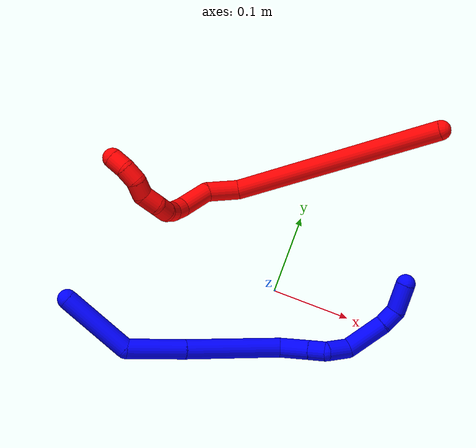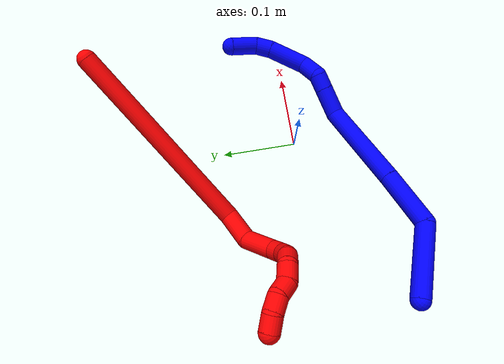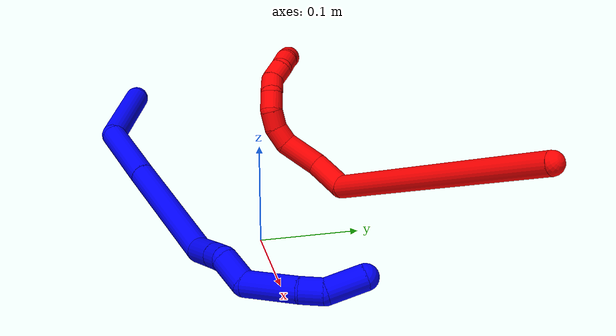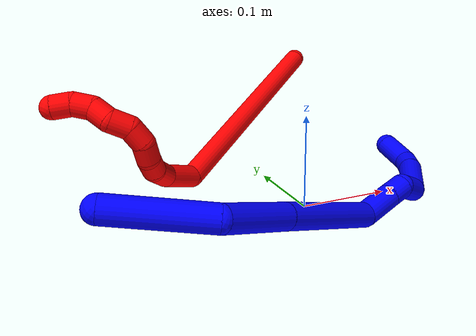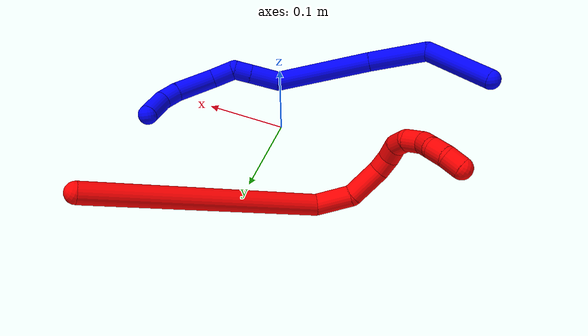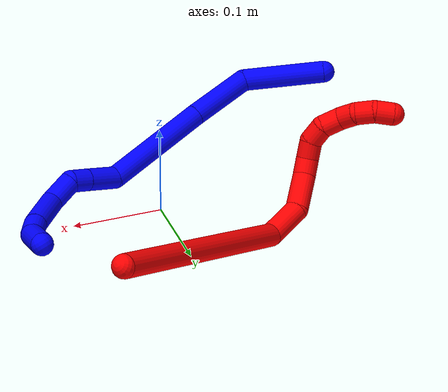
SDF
<sdf version="1.7">
 <world name="default">
  <model name="photoneo_s_sensor">
   <static>1</static>
   <pose>0 0 2 1.57079 1.57079 3.14159</pose>
   <link name="link">
    <inertial><mass>0.1</mass></inertial>
    <sensor name="sensor" type="depth">
     <update_rate>30</update_rate>
     <camera>
      <horizontal_fov>1.22</horizontal_fov>
      <image><width>1920</width><height>1200</height><format>B8G8R8</format></image>
      <clip><near>0.1</near><far>4</far></clip>
      <depth_camera><output>points</output></depth_camera>
     </camera>
     <plugin name="camera_plugin" filename="libgazebo_ros_depth_camera.so">
      <baseline>0.2</baseline>
      <alwaysOn>1</alwaysOn>
      <updateRate>0.0</updateRate>
      <cameraName>camera_ir</cameraName>
      <imageTopicName>/camera/color/image_raw</imageTopicName>
      <cameraInfoTopicName>/camera/color/camera_info</cameraInfoTopicName>
      <depthImageTopicName>/camera/depth/image_raw</depthImageTopicName>
      <depthImageCameraInfoTopicName>/camera/depth/camera_info</depthImageCameraInfoTopicName>
      <pointCloudTopicName>/camera/depth/points</pointCloudTopicName>
      <frameName>fr_optical</frameName>
      <pointCloudCutoff>0.1</pointCloudCutoff>
      <pointCloudCutoffMax>2.0</pointCloudCutoffMax>
      <distortionK1>0</distortionK1>
      <distortionK2>0</distortionK2>
      <distortionK3>0</distortionK3>
      <distortionT1>0</distortionT1>
      <distortionT2>0</distortionT2>
      <CxPrime>0</CxPrime>
      <Cx>0</Cx>
      <Cy>0</Cy>
      <focalLength>0</focalLength>
      <hackBaseline>0</hackBaseline>
     </plugin>
    </sensor>
   </link>
  </model>
  <model name="bin">
   <static>1</static>
   <link name="bottom">
    <collision name="collision-bottom">
     <pose>0 0 -0.01 0 -0 0</pose>
     <geometry><box><size>0.8 0.6 0.02</size></box></geometry>
     <surface>
      <friction><ode><mu>100</mu><mu2>100</mu2></ode></friction>
      <contact><collide_bitmask>65535</collide_bitmask></contact>
     </surface>
    </collision>
   </link>
   <link name="west_wall">
    <collision name="collision-west_wall">
     <pose>-0.41 0 0.1 0 -0 0</pose>
     <geometry><box><size>0.02 0.6 0.2</size></box></geometry>
     <surface>
      <friction><ode><mu>100</mu><mu2>100</mu2></ode></friction>
      <contact><collide_bitmask>65535</collide_bitmask></contact>
     </surface>
    </collision>
   </link>
   <link name="east_wall">
    <collision name="collision-east_wall">
     <pose>0.41 0 0.1 0 -0 0</pose>
     <geometry><box><size>0.02 0.6 0.2</size></box></geometry>
     <surface>
      <friction><ode><mu>100</mu><mu2>100</mu2></ode></friction>
      <contact><collide_bitmask>65535</collide_bitmask></contact>
     </surface>
    </collision>
   </link>
   <link name="south_wall">
    <collision name="collision-south_wall">
     <pose>0 -0.31 0.1 0 -0 0</pose>
     <geometry><box><size>0.8 0.02 0.2</size></box></geometry>
     <surface>
      <friction><ode><mu>100</mu><mu2>100</mu2></ode></friction>
      <contact><collide_bitmask>65535</collide_bitmask></contact>
     </surface>
    </collision>
   </link>
   <link name="north_wall">
    <collision name="collision-north_wall">
     <pose>0 0.31 0.1 0 -0 0</pose>
     <geometry><box><size>0.8 0.02 0.2</size></box></geometry>
     <surface>
      <friction><ode><mu>100</mu><mu2>100</mu2></ode></friction>
      <contact><collide_bitmask>65535</collide_bitmask></contact>
     </surface>
    </collision>
   </link>
  </model>
  <model name="1">
   <static>0</static>
   <link name="1">
    <collision name="collision-cylinder-e_1_1_4">
     <pose>0.041172 -0.010631 0.019229 0.505023 1.08057 0.307092</pose>
     <geometry><cylinder><radius>0.0125</radius><length>0.093336</length></cylinder></geometry>
     <surface>
      <friction><ode><mu>1.16</mu><mu2>1.16</mu2><slip1>0</slip1><slip2>0</slip2></ode></friction>
      <contact><ode><kp>1e+06</kp><kd>1</kd><max_vel>0</max_vel><min_depth>0.001</min_depth></ode></contact>
     </surface>
    </collision>
    <visual name="visual-cylinder-e_1_1_4">
     <pose>0.041172 -0.010631 0.019229 0.505023 1.08057 0.307092</pose>
     <geometry><cylinder><radius>0.0125</radius><length>0.093336</length></cylinder></geometry>
     <material><ambient>0 0 1 1</ambient></material>
    </visual>
    <collision name="collision-cylinder-e_2_4_5">
     <pose>0.118535 -0.012038 0.035811 -1.85039 1.31161 -1.59196</pose>
     <geometry><cylinder><radius>0.0125</radius><length>0.074885</length></cylinder></geometry>
     <surface>
      <friction><ode><mu>1.16</mu><mu2>1.16</mu2><slip1>0</slip1><slip2>0</slip2></ode></friction>
      <contact><ode><kp>1e+06</kp><kd>1</kd><max_vel>0</max_vel><min_depth>0.001</min_depth></ode></contact>
     </surface>
    </collision>
    <visual name="visual-cylinder-e_2_4_5">
     <pose>0.118535 -0.012038 0.035811 -1.85039 1.31161 -1.59196</pose>
     <geometry><cylinder><radius>0.0125</radius><length>0.074885</length></cylinder></geometry>
     <material><ambient>0 0 1 1</ambient></material>
    </visual>
    <collision name="collision-cylinder-e_3_5_6">
     <pose>0.214619 0.013001 0.026823 -1.95206 1.29364 -1.68065</pose>
     <geometry><cylinder><radius>0.0125</radius><length>0.124538</length></cylinder></geometry>
     <surface>
      <friction><ode><mu>1.16</mu><mu2>1.16</mu2><slip1>0</slip1><slip2>0</slip2></ode></friction>
      <contact><ode><kp>1e+06</kp><kd>1</kd><max_vel>0</max_vel><min_depth>0.001</min_depth></ode></contact>
     </surface>
    </collision>
    <visual name="visual-cylinder-e_3_5_6">
     <pose>0.214619 0.013001 0.026823 -1.95206 1.29364 -1.68065</pose>
     <geometry><cylinder><radius>0.0125</radius><length>0.124538</length></cylinder></geometry>
     <material><ambient>0 0 1 1</ambient></material>
    </visual>
    <collision name="collision-cylinder-e_4_6_7">
     <pose>0.289652 0.038183 0.027811 -0.906935 0.904924 -0.46521</pose>
     <geometry><cylinder><radius>0.0125</radius><length>0.038507</length></cylinder></geometry>
     <surface>
      <friction><ode><mu>1.16</mu><mu2>1.16</mu2><slip1>0</slip1><slip2>0</slip2></ode></friction>
      <contact><ode><kp>1e+06</kp><kd>1</kd><max_vel>0</max_vel><min_depth>0.001</min_depth></ode></contact>
     </surface>
    </collision>
    <visual name="visual-cylinder-e_4_6_7">
     <pose>0.289652 0.038183 0.027811 -0.906935 0.904924 -0.46521</pose>
     <geometry><cylinder><radius>0.0125</radius><length>0.038507</length></cylinder></geometry>
     <material><ambient>0 0 1 1</ambient></material>
    </visual>
    <collision name="collision-cylinder-e_5_7_8">
     <pose>0.313429 0.052743 0.039224 -0.904205 0.917805 -0.470999</pose>
     <geometry><cylinder><radius>0.0125</radius><length>0.021745</length></cylinder></geometry>
     <surface>
      <friction><ode><mu>1.16</mu><mu2>1.16</mu2><slip1>0</slip1><slip2>0</slip2></ode></friction>
      <contact><ode><kp>1e+06</kp><kd>1</kd><max_vel>0</max_vel><min_depth>0.001</min_depth></ode></contact>
     </surface>
    </collision>
    <visual name="visual-cylinder-e_5_7_8">
     <pose>0.313429 0.052743 0.039224 -0.904205 0.917805 -0.470999</pose>
     <geometry><cylinder><radius>0.0125</radius><length>0.021745</length></cylinder></geometry>
     <material><ambient>0 0 1 1</ambient></material>
    </visual>
    <collision name="collision-cylinder-e_6_8_9">
     <pose>0.337015 0.061987 0.039115 -2.37329 1.19885 -2.07316</pose>
     <geometry><cylinder><radius>0.0125</radius><length>0.032096</length></cylinder></geometry>
     <surface>
      <friction><ode><mu>1.16</mu><mu2>1.16</mu2><slip1>0</slip1><slip2>0</slip2></ode></friction>
      <contact><ode><kp>1e+06</kp><kd>1</kd><max_vel>0</max_vel><min_depth>0.001</min_depth></ode></contact>
     </surface>
    </collision>
    <visual name="visual-cylinder-e_6_8_9">
     <pose>0.337015 0.061987 0.039115 -2.37329 1.19885 -2.07316</pose>
     <geometry><cylinder><radius>0.0125</radius><length>0.032096</length></cylinder></geometry>
     <material><ambient>0 0 1 1</ambient></material>
    </visual>
    <collision name="collision-cylinder-e_7_9_10">
     <pose>0.367165 0.087952 0.030127 -1.78619 0.595548 -0.728572</pose>
     <geometry><cylinder><radius>0.0125</radius><length>0.054189</length></cylinder></geometry>
     <surface>
      <friction><ode><mu>1.16</mu><mu2>1.16</mu2><slip1>0</slip1><slip2>0</slip2></ode></friction>
      <contact><ode><kp>1e+06</kp><kd>1</kd><max_vel>0</max_vel><min_depth>0.001</min_depth></ode></contact>
     </surface>
    </collision>
    <visual name="visual-cylinder-e_7_9_10">
     <pose>0.367165 0.087952 0.030127 -1.78619 0.595548 -0.728572</pose>
     <geometry><cylinder><radius>0.0125</radius><length>0.054189</length></cylinder></geometry>
     <material><ambient>0 0 1 1</ambient></material>
    </visual>
    <collision name="collision-cylinder-e_8_10_11">
     <pose>0.387365 0.119573 0.021778 -1.9217 0.45056 -0.633757</pose>
     <geometry><cylinder><radius>0.0125</radius><length>0.022971</length></cylinder></geometry>
     <surface>
      <friction><ode><mu>1.16</mu><mu2>1.16</mu2><slip1>0</slip1><slip2>0</slip2></ode></friction>
      <contact><ode><kp>1e+06</kp><kd>1</kd><max_vel>0</max_vel><min_depth>0.001</min_depth></ode></contact>
     </surface>
    </collision>
    <visual name="visual-cylinder-e_8_10_11">
     <pose>0.387365 0.119573 0.021778 -1.9217 0.45056 -0.633757</pose>
     <geometry><cylinder><radius>0.0125</radius><length>0.022971</length></cylinder></geometry>
     <material><ambient>0 0 1 1</ambient></material>
    </visual>
    <collision name="collision-cylinder-e_9_11_2">
     <pose>0.391457 0.147132 0.012182 -1.89721 -0.04826 0.067275</pose>
     <geometry><cylinder><radius>0.0125</radius><length>0.037733</length></cylinder></geometry>
     <surface>
      <friction><ode><mu>1.16</mu><mu2>1.16</mu2><slip1>0</slip1><slip2>0</slip2></ode></friction>
      <contact><ode><kp>1e+06</kp><kd>1</kd><max_vel>0</max_vel><min_depth>0.001</min_depth></ode></contact>
     </surface>
    </collision>
    <visual name="visual-cylinder-e_9_11_2">
     <pose>0.391457 0.147132 0.012182 -1.89721 -0.04826 0.067275</pose>
     <geometry><cylinder><radius>0.0125</radius><length>0.037733</length></cylinder></geometry>
     <material><ambient>0 0 1 1</ambient></material>
    </visual>
    <collision name="collision-sphere-2">
     <pose>0.390547 0.164981 0.006139 0 -0 0</pose>
     <geometry><sphere><radius>0.0125</radius></sphere></geometry>
     <surface>
      <friction><ode><mu>1.16</mu><mu2>1.16</mu2><slip1>0</slip1><slip2>0</slip2></ode></friction>
      <contact><ode><kp>1e+06</kp><kd>1</kd><max_vel>0</max_vel><min_depth>0.001</min_depth></ode></contact>
     </surface>
    </collision>
    <visual name="visual-sphere-2">
     <pose>0.390547 0.164981 0.006139 0 -0 0</pose>
     <geometry><sphere><radius>0.0125</radius></sphere></geometry>
     <material><ambient>0 0 1 1</ambient></material>
    </visual>
    <collision name="collision-sphere-11">
     <pose>0.392367 0.129282 0.018224 0 -0 0</pose>
     <geometry><sphere><radius>0.0125</radius></sphere></geometry>
     <surface>
      <friction><ode><mu>1.16</mu><mu2>1.16</mu2><slip1>0</slip1><slip2>0</slip2></ode></friction>
      <contact><ode><kp>1e+06</kp><kd>1</kd><max_vel>0</max_vel><min_depth>0.001</min_depth></ode></contact>
     </surface>
    </collision>
    <visual name="visual-sphere-11">
     <pose>0.392367 0.129282 0.018224 0 -0 0</pose>
     <geometry><sphere><radius>0.0125</radius></sphere></geometry>
     <material><ambient>0 0 1 1</ambient></material>
    </visual>
    <collision name="collision-sphere-10">
     <pose>0.382364 0.109863 0.025333 0 -0 0</pose>
     <geometry><sphere><radius>0.0125</radius></sphere></geometry>
     <surface>
      <friction><ode><mu>1.16</mu><mu2>1.16</mu2><slip1>0</slip1><slip2>0</slip2></ode></friction>
      <contact><ode><kp>1e+06</kp><kd>1</kd><max_vel>0</max_vel><min_depth>0.001</min_depth></ode></contact>
     </surface>
    </collision>
    <visual name="visual-sphere-10">
     <pose>0.382364 0.109863 0.025333 0 -0 0</pose>
     <geometry><sphere><radius>0.0125</radius></sphere></geometry>
     <material><ambient>0 0 1 1</ambient></material>
    </visual>
    <collision name="collision-sphere-9">
     <pose>0.351966 0.06604 0.034921 0 -0 0</pose>
     <geometry><sphere><radius>0.0125</radius></sphere></geometry>
     <surface>
      <friction><ode><mu>1.16</mu><mu2>1.16</mu2><slip1>0</slip1><slip2>0</slip2></ode></friction>
      <contact><ode><kp>1e+06</kp><kd>1</kd><max_vel>0</max_vel><min_depth>0.001</min_depth></ode></contact>
     </surface>
    </collision>
    <visual name="visual-sphere-9">
     <pose>0.351966 0.06604 0.034921 0 -0 0</pose>
     <geometry><sphere><radius>0.0125</radius></sphere></geometry>
     <material><ambient>0 0 1 1</ambient></material>
    </visual>
    <collision name="collision-sphere-4">
     <pose>0.082343 -0.021262 0.038459 0 -0 0</pose>
     <geometry><sphere><radius>0.0125</radius></sphere></geometry>
     <surface>
      <friction><ode><mu>1.16</mu><mu2>1.16</mu2><slip1>0</slip1><slip2>0</slip2></ode></friction>
      <contact><ode><kp>1e+06</kp><kd>1</kd><max_vel>0</max_vel><min_depth>0.001</min_depth></ode></contact>
     </surface>
    </collision>
    <visual name="visual-sphere-4">
     <pose>0.082343 -0.021262 0.038459 0 -0 0</pose>
     <geometry><sphere><radius>0.0125</radius></sphere></geometry>
     <material><ambient>0 0 1 1</ambient></material>
    </visual>
    <collision name="collision-sphere-1">
     <geometry><sphere><radius>0.0125</radius></sphere></geometry>
     <surface>
      <friction><ode><mu>1.16</mu><mu2>1.16</mu2><slip1>0</slip1><slip2>0</slip2></ode></friction>
      <contact><ode><kp>1e+06</kp><kd>1</kd><max_vel>0</max_vel><min_depth>0.001</min_depth></ode></contact>
     </surface>
    </collision>
    <visual name="visual-sphere-1">
     <geometry><sphere><radius>0.0125</radius></sphere></geometry>
     <material><ambient>0 0 1 1</ambient></material>
    </visual>
    <collision name="collision-sphere-8">
     <pose>0.322064 0.057934 0.043309 0 -0 0</pose>
     <geometry><sphere><radius>0.0125</radius></sphere></geometry>
     <surface>
      <friction><ode><mu>1.16</mu><mu2>1.16</mu2><slip1>0</slip1><slip2>0</slip2></ode></friction>
      <contact><ode><kp>1e+06</kp><kd>1</kd><max_vel>0</max_vel><min_depth>0.001</min_depth></ode></contact>
     </surface>
    </collision>
    <visual name="visual-sphere-8">
     <pose>0.322064 0.057934 0.043309 0 -0 0</pose>
     <geometry><sphere><radius>0.0125</radius></sphere></geometry>
     <material><ambient>0 0 1 1</ambient></material>
    </visual>
    <collision name="collision-sphere-5">
     <pose>0.154727 -0.002814 0.033162 0 -0 0</pose>
     <geometry><sphere><radius>0.0125</radius></sphere></geometry>
     <surface>
      <friction><ode><mu>1.16</mu><mu2>1.16</mu2><slip1>0</slip1><slip2>0</slip2></ode></friction>
      <contact><ode><kp>1e+06</kp><kd>1</kd><max_vel>0</max_vel><min_depth>0.001</min_depth></ode></contact>
     </surface>
    </collision>
    <visual name="visual-sphere-5">
     <pose>0.154727 -0.002814 0.033162 0 -0 0</pose>
     <geometry><sphere><radius>0.0125</radius></sphere></geometry>
     <material><ambient>0 0 1 1</ambient></material>
    </visual>
    <collision name="collision-sphere-6">
     <pose>0.274512 0.028815 0.020483 0 -0 0</pose>
     <geometry><sphere><radius>0.0125</radius></sphere></geometry>
     <surface>
      <friction><ode><mu>1.16</mu><mu2>1.16</mu2><slip1>0</slip1><slip2>0</slip2></ode></friction>
      <contact><ode><kp>1e+06</kp><kd>1</kd><max_vel>0</max_vel><min_depth>0.001</min_depth></ode></contact>
     </surface>
    </collision>
    <visual name="visual-sphere-6">
     <pose>0.274512 0.028815 0.020483 0 -0 0</pose>
     <geometry><sphere><radius>0.0125</radius></sphere></geometry>
     <material><ambient>0 0 1 1</ambient></material>
    </visual>
    <collision name="collision-sphere-7">
     <pose>0.304793 0.047551 0.03514 0 -0 0</pose>
     <geometry><sphere><radius>0.0125</radius></sphere></geometry>
     <surface>
      <friction><ode><mu>1.16</mu><mu2>1.16</mu2><slip1>0</slip1><slip2>0</slip2></ode></friction>
      <contact><ode><kp>1e+06</kp><kd>1</kd><max_vel>0</max_vel><min_depth>0.001</min_depth></ode></contact>
     </surface>
    </collision>
    <visual name="visual-sphere-7">
     <pose>0.304793 0.047551 0.03514 0 -0 0</pose>
     <geometry><sphere><radius>0.0125</radius></sphere></geometry>
     <material><ambient>0 0 1 1</ambient></material>
    </visual>
    <inertial>
     <pose>0.223598 0.034793 0.027177 0 -0 0</pose>
     <mass>0.5</mass>
     <inertia>
      <ixx>2.1e-05</ixx>
      <ixy>0</ixy>
      <ixz>0</ixz>
      <iyy>0.000225</iyy>
      <iyz>0</iyz>
      <izz>-0.000338</izz>
     </inertia>
    </inertial>
   </link>
   <pose>-0.233912 -0.099591 0.081113 0.58861 0.374295 0.081003</pose>
  </model>
  <model name="2">
   <static>0</static>
   <link name="2">
    <collision name="collision-cylinder-e_1_1_4">
     <pose>-0.029254 -0.036065 -0.127507 2.86594 -0.217282 -1.33273</pose>
     <geometry><cylinder><radius>0.0125</radius><length>0.271401</length></cylinder></geometry>
     <surface>
      <friction><ode><mu>1.16</mu><mu2>1.16</mu2><slip1>0</slip1><slip2>0</slip2></ode></friction>
      <contact><ode><kp>1e+06</kp><kd>1</kd><max_vel>0</max_vel><min_depth>0.001</min_depth></ode></contact>
     </surface>
    </collision>
    <visual name="visual-cylinder-e_1_1_4">
     <pose>-0.029254 -0.036065 -0.127507 2.86594 -0.217282 -1.33273</pose>
     <geometry><cylinder><radius>0.0125</radius><length>0.271401</length></cylinder></geometry>
     <material><ambient>1 0 0 1</ambient></material>
    </visual>
    <collision name="collision-cylinder-e_2_4_5">
     <pose>-0.074516 -0.080755 -0.266646 2.50355 -0.835456 -1.86207</pose>
     <geometry><cylinder><radius>0.0125</radius><length>0.043171</length></cylinder></geometry>
     <surface>
      <friction><ode><mu>1.16</mu><mu2>1.16</mu2><slip1>0</slip1><slip2>0</slip2></ode></friction>
      <contact><ode><kp>1e+06</kp><kd>1</kd><max_vel>0</max_vel><min_depth>0.001</min_depth></ode></contact>
     </surface>
    </collision>
    <visual name="visual-cylinder-e_2_4_5">
     <pose>-0.074516 -0.080755 -0.266646 2.50355 -0.835456 -1.86207</pose>
     <geometry><cylinder><radius>0.0125</radius><length>0.043171</length></cylinder></geometry>
     <material><ambient>1 0 0 1</ambient></material>
    </visual>
    <collision name="collision-cylinder-e_3_5_6">
     <pose>-0.102153 -0.106094 -0.2843 1.91666 -0.57963 -0.802798</pose>
     <geometry><cylinder><radius>0.0125</radius><length>0.042467</length></cylinder></geometry>
     <surface>
      <friction><ode><mu>1.16</mu><mu2>1.16</mu2><slip1>0</slip1><slip2>0</slip2></ode></friction>
      <contact><ode><kp>1e+06</kp><kd>1</kd><max_vel>0</max_vel><min_depth>0.001</min_depth></ode></contact>
     </surface>
    </collision>
    <visual name="visual-cylinder-e_3_5_6">
     <pose>-0.102153 -0.106094 -0.2843 1.91666 -0.57963 -0.802798</pose>
     <geometry><cylinder><radius>0.0125</radius><length>0.042467</length></cylinder></geometry>
     <material><ambient>1 0 0 1</ambient></material>
    </visual>
    <collision name="collision-cylinder-e_4_6_7">
     <pose>-0.121041 -0.129795 -0.289682 1.47931 -0.802212 -0.73845</pose>
     <geometry><cylinder><radius>0.0125</radius><length>0.020192</length></cylinder></geometry>
     <surface>
      <friction><ode><mu>1.16</mu><mu2>1.16</mu2><slip1>0</slip1><slip2>0</slip2></ode></friction>
      <contact><ode><kp>1e+06</kp><kd>1</kd><max_vel>0</max_vel><min_depth>0.001</min_depth></ode></contact>
     </surface>
    </collision>
    <visual name="visual-cylinder-e_4_6_7">
     <pose>-0.121041 -0.129795 -0.289682 1.47931 -0.802212 -0.73845</pose>
     <geometry><cylinder><radius>0.0125</radius><length>0.020192</length></cylinder></geometry>
     <material><ambient>1 0 0 1</ambient></material>
    </visual>
    <collision name="collision-cylinder-e_5_7_8">
     <pose>-0.136363 -0.141728 -0.285478 0.946311 -0.923652 -0.498994</pose>
     <geometry><cylinder><radius>0.0125</radius><length>0.020216</length></cylinder></geometry>
     <surface>
      <friction><ode><mu>1.16</mu><mu2>1.16</mu2><slip1>0</slip1><slip2>0</slip2></ode></friction>
      <contact><ode><kp>1e+06</kp><kd>1</kd><max_vel>0</max_vel><min_depth>0.001</min_depth></ode></contact>
     </surface>
    </collision>
    <visual name="visual-cylinder-e_5_7_8">
     <pose>-0.136363 -0.141728 -0.285478 0.946311 -0.923652 -0.498994</pose>
     <geometry><cylinder><radius>0.0125</radius><length>0.020216</length></cylinder></geometry>
     <material><ambient>1 0 0 1</ambient></material>
    </visual>
    <collision name="collision-cylinder-e_6_8_9">
     <pose>-0.154429 -0.147666 -0.280251 0.538557 -1.37945 -0.44767</pose>
     <geometry><cylinder><radius>0.0125</radius><length>0.020376</length></cylinder></geometry>
     <surface>
      <friction><ode><mu>1.16</mu><mu2>1.16</mu2><slip1>0</slip1><slip2>0</slip2></ode></friction>
      <contact><ode><kp>1e+06</kp><kd>1</kd><max_vel>0</max_vel><min_depth>0.001</min_depth></ode></contact>
     </surface>
    </collision>
    <visual name="visual-cylinder-e_6_8_9">
     <pose>-0.154429 -0.147666 -0.280251 0.538557 -1.37945 -0.44767</pose>
     <geometry><cylinder><radius>0.0125</radius><length>0.020376</length></cylinder></geometry>
     <material><ambient>1 0 0 1</ambient></material>
    </visual>
    <collision name="collision-cylinder-e_7_9_10">
     <pose>-0.174894 -0.146953 -0.281535 -2.61676 -1.2561 2.43297</pose>
     <geometry><cylinder><radius>0.0125</radius><length>0.022005</length></cylinder></geometry>
     <surface>
      <friction><ode><mu>1.16</mu><mu2>1.16</mu2><slip1>0</slip1><slip2>0</slip2></ode></friction>
      <contact><ode><kp>1e+06</kp><kd>1</kd><max_vel>0</max_vel><min_depth>0.001</min_depth></ode></contact>
     </surface>
    </collision>
    <visual name="visual-cylinder-e_7_9_10">
     <pose>-0.174894 -0.146953 -0.281535 -2.61676 -1.2561 2.43297</pose>
     <geometry><cylinder><radius>0.0125</radius><length>0.022005</length></cylinder></geometry>
     <material><ambient>1 0 0 1</ambient></material>
    </visual>
    <collision name="collision-cylinder-e_8_10_11">
     <pose>-0.194132 -0.14056 -0.283224 -1.30854 -1.06569 0.849557</pose>
     <geometry><cylinder><radius>0.0125</radius><length>0.020055</length></cylinder></geometry>
     <surface>
      <friction><ode><mu>1.16</mu><mu2>1.16</mu2><slip1>0</slip1><slip2>0</slip2></ode></friction>
      <contact><ode><kp>1e+06</kp><kd>1</kd><max_vel>0</max_vel><min_depth>0.001</min_depth></ode></contact>
     </surface>
    </collision>
    <visual name="visual-cylinder-e_8_10_11">
     <pose>-0.194132 -0.14056 -0.283224 -1.30854 -1.06569 0.849557</pose>
     <geometry><cylinder><radius>0.0125</radius><length>0.020055</length></cylinder></geometry>
     <material><ambient>1 0 0 1</ambient></material>
    </visual>
    <collision name="collision-cylinder-e_9_11_12">
     <pose>-0.211232 -0.131243 -0.285179 -2.17729 -0.975686 1.58459</pose>
     <geometry><cylinder><radius>0.0125</radius><length>0.020106</length></cylinder></geometry>
     <surface>
      <friction><ode><mu>1.16</mu><mu2>1.16</mu2><slip1>0</slip1><slip2>0</slip2></ode></friction>
      <contact><ode><kp>1e+06</kp><kd>1</kd><max_vel>0</max_vel><min_depth>0.001</min_depth></ode></contact>
     </surface>
    </collision>
    <visual name="visual-cylinder-e_9_11_12">
     <pose>-0.211232 -0.131243 -0.285179 -2.17729 -0.975686 1.58459</pose>
     <geometry><cylinder><radius>0.0125</radius><length>0.020106</length></cylinder></geometry>
     <material><ambient>1 0 0 1</ambient></material>
    </visual>
    <collision name="collision-cylinder-e_10_12_2">
     <pose>-0.225728 -0.121775 -0.294605 -2.48011 -0.664656 1.57595</pose>
     <geometry><cylinder><radius>0.0125</radius><length>0.020011</length></cylinder></geometry>
     <surface>
      <friction><ode><mu>1.16</mu><mu2>1.16</mu2><slip1>0</slip1><slip2>0</slip2></ode></friction>
      <contact><ode><kp>1e+06</kp><kd>1</kd><max_vel>0</max_vel><min_depth>0.001</min_depth></ode></contact>
     </surface>
    </collision>
    <visual name="visual-cylinder-e_10_12_2">
     <pose>-0.225728 -0.121775 -0.294605 -2.48011 -0.664656 1.57595</pose>
     <geometry><cylinder><radius>0.0125</radius><length>0.020011</length></cylinder></geometry>
     <material><ambient>1 0 0 1</ambient></material>
    </visual>
    <collision name="collision-sphere-2">
     <pose>-0.231899 -0.116937 -0.30082 0 -0 0</pose>
     <geometry><sphere><radius>0.0125</radius></sphere></geometry>
     <surface>
      <friction><ode><mu>1.16</mu><mu2>1.16</mu2><slip1>0</slip1><slip2>0</slip2></ode></friction>
      <contact><ode><kp>1e+06</kp><kd>1</kd><max_vel>0</max_vel><min_depth>0.001</min_depth></ode></contact>
     </surface>
    </collision>
    <visual name="visual-sphere-2">
     <pose>-0.231899 -0.116937 -0.30082 0 -0 0</pose>
     <geometry><sphere><radius>0.0125</radius></sphere></geometry>
     <material><ambient>1 0 0 1</ambient></material>
    </visual>
    <collision name="collision-sphere-12">
     <pose>-0.219556 -0.126613 -0.288391 0 -0 0</pose>
     <geometry><sphere><radius>0.0125</radius></sphere></geometry>
     <surface>
      <friction><ode><mu>1.16</mu><mu2>1.16</mu2><slip1>0</slip1><slip2>0</slip2></ode></friction>
      <contact><ode><kp>1e+06</kp><kd>1</kd><max_vel>0</max_vel><min_depth>0.001</min_depth></ode></contact>
     </surface>
    </collision>
    <visual name="visual-sphere-12">
     <pose>-0.219556 -0.126613 -0.288391 0 -0 0</pose>
     <geometry><sphere><radius>0.0125</radius></sphere></geometry>
     <material><ambient>1 0 0 1</ambient></material>
    </visual>
    <collision name="collision-sphere-11">
     <pose>-0.202907 -0.135874 -0.281966 0 -0 0</pose>
     <geometry><sphere><radius>0.0125</radius></sphere></geometry>
     <surface>
      <friction><ode><mu>1.16</mu><mu2>1.16</mu2><slip1>0</slip1><slip2>0</slip2></ode></friction>
      <contact><ode><kp>1e+06</kp><kd>1</kd><max_vel>0</max_vel><min_depth>0.001</min_depth></ode></contact>
     </surface>
    </collision>
    <visual name="visual-sphere-11">
     <pose>-0.202907 -0.135874 -0.281966 0 -0 0</pose>
     <geometry><sphere><radius>0.0125</radius></sphere></geometry>
     <material><ambient>1 0 0 1</ambient></material>
    </visual>
    <collision name="collision-sphere-10">
     <pose>-0.185356 -0.145246 -0.284482 0 -0 0</pose>
     <geometry><sphere><radius>0.0125</radius></sphere></geometry>
     <surface>
      <friction><ode><mu>1.16</mu><mu2>1.16</mu2><slip1>0</slip1><slip2>0</slip2></ode></friction>
      <contact><ode><kp>1e+06</kp><kd>1</kd><max_vel>0</max_vel><min_depth>0.001</min_depth></ode></contact>
     </surface>
    </collision>
    <visual name="visual-sphere-10">
     <pose>-0.185356 -0.145246 -0.284482 0 -0 0</pose>
     <geometry><sphere><radius>0.0125</radius></sphere></geometry>
     <material><ambient>1 0 0 1</ambient></material>
    </visual>
    <collision name="collision-sphere-9">
     <pose>-0.164432 -0.148659 -0.278588 0 -0 0</pose>
     <geometry><sphere><radius>0.0125</radius></sphere></geometry>
     <surface>
      <friction><ode><mu>1.16</mu><mu2>1.16</mu2><slip1>0</slip1><slip2>0</slip2></ode></friction>
      <contact><ode><kp>1e+06</kp><kd>1</kd><max_vel>0</max_vel><min_depth>0.001</min_depth></ode></contact>
     </surface>
    </collision>
    <visual name="visual-sphere-9">
     <pose>-0.164432 -0.148659 -0.278588 0 -0 0</pose>
     <geometry><sphere><radius>0.0125</radius></sphere></geometry>
     <material><ambient>1 0 0 1</ambient></material>
    </visual>
    <collision name="collision-sphere-4">
     <pose>-0.058508 -0.072131 -0.255014 0 -0 0</pose>
     <geometry><sphere><radius>0.0125</radius></sphere></geometry>
     <surface>
      <friction><ode><mu>1.16</mu><mu2>1.16</mu2><slip1>0</slip1><slip2>0</slip2></ode></friction>
      <contact><ode><kp>1e+06</kp><kd>1</kd><max_vel>0</max_vel><min_depth>0.001</min_depth></ode></contact>
     </surface>
    </collision>
    <visual name="visual-sphere-4">
     <pose>-0.058508 -0.072131 -0.255014 0 -0 0</pose>
     <geometry><sphere><radius>0.0125</radius></sphere></geometry>
     <material><ambient>1 0 0 1</ambient></material>
    </visual>
    <collision name="collision-sphere-1">
     <geometry><sphere><radius>0.0125</radius></sphere></geometry>
     <surface>
      <friction><ode><mu>1.16</mu><mu2>1.16</mu2><slip1>0</slip1><slip2>0</slip2></ode></friction>
      <contact><ode><kp>1e+06</kp><kd>1</kd><max_vel>0</max_vel><min_depth>0.001</min_depth></ode></contact>
     </surface>
    </collision>
    <visual name="visual-sphere-1">
     <geometry><sphere><radius>0.0125</radius></sphere></geometry>
     <material><ambient>1 0 0 1</ambient></material>
    </visual>
    <collision name="collision-sphere-8">
     <pose>-0.144427 -0.146672 -0.281915 0 -0 0</pose>
     <geometry><sphere><radius>0.0125</radius></sphere></geometry>
     <surface>
      <friction><ode><mu>1.16</mu><mu2>1.16</mu2><slip1>0</slip1><slip2>0</slip2></ode></friction>
      <contact><ode><kp>1e+06</kp><kd>1</kd><max_vel>0</max_vel><min_depth>0.001</min_depth></ode></contact>
     </surface>
    </collision>
    <visual name="visual-sphere-8">
     <pose>-0.144427 -0.146672 -0.281915 0 -0 0</pose>
     <geometry><sphere><radius>0.0125</radius></sphere></geometry>
     <material><ambient>1 0 0 1</ambient></material>
    </visual>
    <collision name="collision-sphere-5">
     <pose>-0.090524 -0.08938 -0.278278 0 -0 0</pose>
     <geometry><sphere><radius>0.0125</radius></sphere></geometry>
     <surface>
      <friction><ode><mu>1.16</mu><mu2>1.16</mu2><slip1>0</slip1><slip2>0</slip2></ode></friction>
      <contact><ode><kp>1e+06</kp><kd>1</kd><max_vel>0</max_vel><min_depth>0.001</min_depth></ode></contact>
     </surface>
    </collision>
    <visual name="visual-sphere-5">
     <pose>-0.090524 -0.08938 -0.278278 0 -0 0</pose>
     <geometry><sphere><radius>0.0125</radius></sphere></geometry>
     <material><ambient>1 0 0 1</ambient></material>
    </visual>
    <collision name="collision-sphere-6">
     <pose>-0.113783 -0.122807 -0.290323 0 -0 0</pose>
     <geometry><sphere><radius>0.0125</radius></sphere></geometry>
     <surface>
      <friction><ode><mu>1.16</mu><mu2>1.16</mu2><slip1>0</slip1><slip2>0</slip2></ode></friction>
      <contact><ode><kp>1e+06</kp><kd>1</kd><max_vel>0</max_vel><min_depth>0.001</min_depth></ode></contact>
     </surface>
    </collision>
    <visual name="visual-sphere-6">
     <pose>-0.113783 -0.122807 -0.290323 0 -0 0</pose>
     <geometry><sphere><radius>0.0125</radius></sphere></geometry>
     <material><ambient>1 0 0 1</ambient></material>
    </visual>
    <collision name="collision-sphere-7">
     <pose>-0.128299 -0.136784 -0.289041 0 -0 0</pose>
     <geometry><sphere><radius>0.0125</radius></sphere></geometry>
     <surface>
      <friction><ode><mu>1.16</mu><mu2>1.16</mu2><slip1>0</slip1><slip2>0</slip2></ode></friction>
      <contact><ode><kp>1e+06</kp><kd>1</kd><max_vel>0</max_vel><min_depth>0.001</min_depth></ode></contact>
     </surface>
    </collision>
    <visual name="visual-sphere-7">
     <pose>-0.128299 -0.136784 -0.289041 0 -0 0</pose>
     <geometry><sphere><radius>0.0125</radius></sphere></geometry>
     <material><ambient>1 0 0 1</ambient></material>
    </visual>
    <inertial>
     <pose>-0.080696 -0.074806 -0.198051 0 -0 0</pose>
     <mass>0.5</mass>
     <inertia>
      <ixx>-0.001227</ixx>
      <ixy>0</ixy>
      <ixz>0</ixz>
      <iyy>-0.001879</iyy>
      <iyz>0</iyz>
      <izz>0.000812</izz>
     </inertia>
    </inertial>
   </link>
   <pose>0.120001 0.250386 0.107417 -0.521765 0.747919 -0.238505</pose>
  </model>
 </world>
</sdf>
